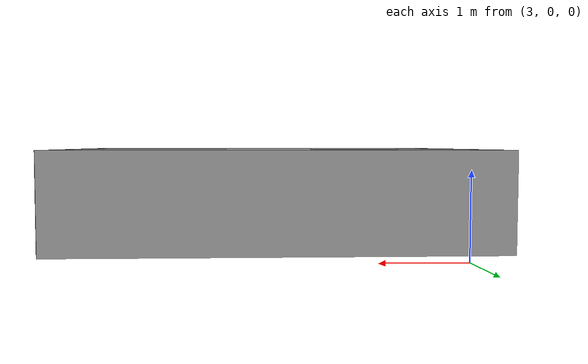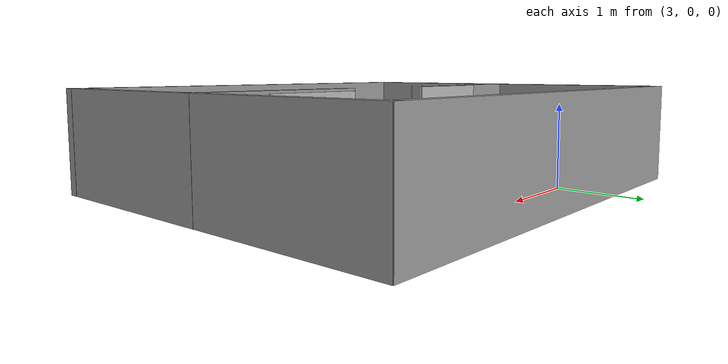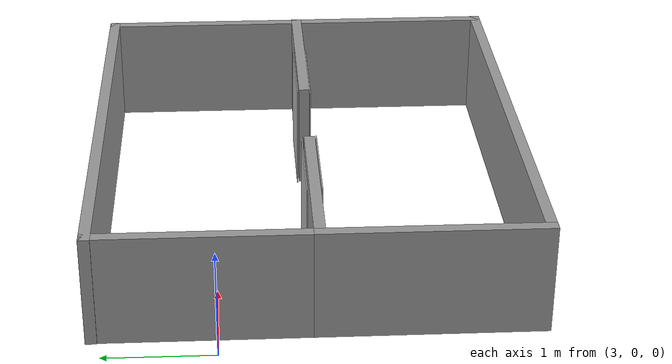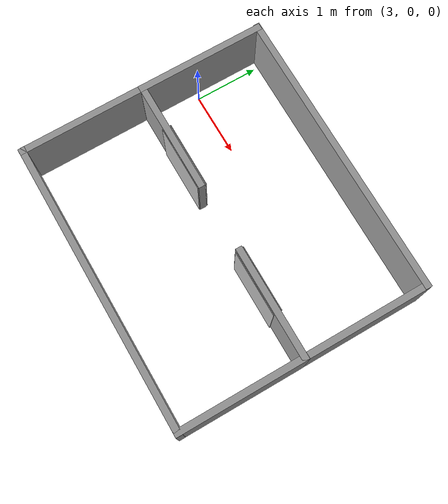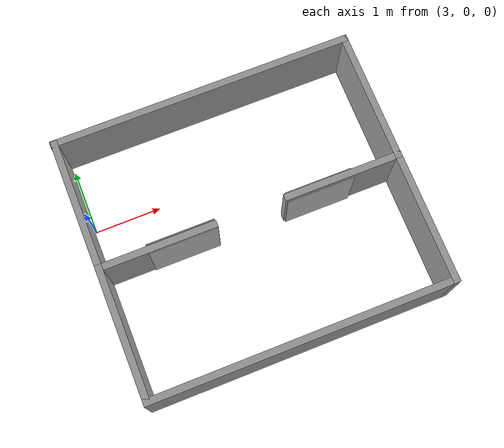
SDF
<?xml version='1.0'?>
<sdf version='1.7'>
  <model name='2_room_tagged'>
    <link name='link_0_clone_0'>
      <inertial>
        <mass>1</mass>
        <inertia>
          <ixx>0.166667</ixx>
          <ixy>0</ixy>
          <ixz>0</ixz>
          <iyy>0.166667</iyy>
          <iyz>0</iyz>
          <izz>0.166667</izz>
        </inertia>
        <pose>0 0 0 0 -0 0</pose>
      </inertial>
      <pose>2.941 -1.80696 0.726516 0 -0 0</pose>
      <gravity>1</gravity>
      <self_collide>0</self_collide>
      <kinematic>0</kinematic>
      <enable_wind>0</enable_wind>
      <visual name='visual'>
        <pose>0 0 0 0 -0 0</pose>
        <geometry>
          <box>
            <size>0.1 2 1</size>
          </box>
        </geometry>
        <material>
          <lighting>1</lighting>
          <script>
            <uri>file://media/materials/scripts/gazebo.material</uri>
            <name>Gazebo/Grey</name>
          </script>
          <shader type='pixel'>
            <normal_map>__default__</normal_map>
          </shader>
          <ambient>0.3 0.3 0.3 1</ambient>
          <diffuse>0.7 0.7 0.7 1</diffuse>
          <specular>0.01 0.01 0.01 1</specular>
          <emissive>0 0 0 1</emissive>
        </material>
        <transparency>0</transparency>
        <cast_shadows>1</cast_shadows>
      </visual>
      <collision name='collision'>
        <laser_retro>0</laser_retro>
        <max_contacts>10</max_contacts>
        <pose>0 0 0 0 -0 0</pose>
        <geometry>
          <box>
            <size>0.1 2 1</size>
          </box>
        </geometry>
        <surface>
          <friction>
            <ode>
              <mu>1</mu>
              <mu2>1</mu2>
              <fdir1>0 0 0</fdir1>
              <slip1>0</slip1>
              <slip2>0</slip2>
            </ode>
            <torsional>
              <coefficient>1</coefficient>
              <patch_radius>0</patch_radius>
              <surface_radius>0</surface_radius>
              <use_patch_radius>1</use_patch_radius>
              <ode>
                <slip>0</slip>
              </ode>
            </torsional>
          </friction>
          <bounce>
            <restitution_coefficient>0</restitution_coefficient>
            <threshold>1e+06</threshold>
          </bounce>
          <contact>
            <collide_without_contact>0</collide_without_contact>
            <collide_without_contact_bitmask>1</collide_without_contact_bitmask>
            <collide_bitmask>1</collide_bitmask>
            <ode>
              <soft_cfm>0</soft_cfm>
              <soft_erp>0.2</soft_erp>
              <kp>1e+13</kp>
              <kd>1</kd>
              <max_vel>0.01</max_vel>
              <min_depth>0</min_depth>
            </ode>
            <bullet>
              <split_impulse>1</split_impulse>
              <split_impulse_penetration_threshold>-0.01</split_impulse_penetration_threshold>
              <soft_cfm>0</soft_cfm>
              <soft_erp>0.2</soft_erp>
              <kp>1e+13</kp>
              <kd>1</kd>
            </bullet>
          </contact>
        </surface>
      </collision>
    </link>
    <link name='link_0_clone_0_clone'>
      <inertial>
        <mass>1</mass>
        <inertia>
          <ixx>0.166667</ixx>
          <ixy>0</ixy>
          <ixz>0</ixz>
          <iyy>0.166667</iyy>
          <iyz>0</iyz>
          <izz>0.166667</izz>
        </inertia>
        <pose>0 0 0 0 -0 0</pose>
      </inertial>
      <pose>2.94115 0.091646 0.726516 0 -0 0</pose>
      <gravity>1</gravity>
      <self_collide>0</self_collide>
      <kinematic>0</kinematic>
      <enable_wind>0</enable_wind>
      <visual name='visual'>
        <pose>0 0 0 0 -0 0</pose>
        <geometry>
          <box>
            <size>0.1 2 1</size>
          </box>
        </geometry>
        <material>
          <lighting>1</lighting>
          <script>
            <uri>file://media/materials/scripts/gazebo.material</uri>
            <name>Gazebo/Grey</name>
          </script>
          <shader type='pixel'>
            <normal_map>__default__</normal_map>
          </shader>
          <ambient>0.3 0.3 0.3 1</ambient>
          <diffuse>0.7 0.7 0.7 1</diffuse>
          <specular>0.01 0.01 0.01 1</specular>
          <emissive>0 0 0 1</emissive>
        </material>
        <transparency>0</transparency>
        <cast_shadows>1</cast_shadows>
      </visual>
      <collision name='collision'>
        <laser_retro>0</laser_retro>
        <max_contacts>10</max_contacts>
        <pose>0 0 0 0 -0 0</pose>
        <geometry>
          <box>
            <size>0.1 2 1</size>
          </box>
        </geometry>
        <surface>
          <friction>
            <ode>
              <mu>1</mu>
              <mu2>1</mu2>
              <fdir1>0 0 0</fdir1>
              <slip1>0</slip1>
              <slip2>0</slip2>
            </ode>
            <torsional>
              <coefficient>1</coefficient>
              <patch_radius>0</patch_radius>
              <surface_radius>0</surface_radius>
              <use_patch_radius>1</use_patch_radius>
              <ode>
                <slip>0</slip>
              </ode>
            </torsional>
          </friction>
          <bounce>
            <restitution_coefficient>0</restitution_coefficient>
            <threshold>1e+06</threshold>
          </bounce>
          <contact>
            <collide_without_contact>0</collide_without_contact>
            <collide_without_contact_bitmask>1</collide_without_contact_bitmask>
            <collide_bitmask>1</collide_bitmask>
            <ode>
              <soft_cfm>0</soft_cfm>
              <soft_erp>0.2</soft_erp>
              <kp>1e+13</kp>
              <kd>1</kd>
              <max_vel>0.01</max_vel>
              <min_depth>0</min_depth>
            </ode>
            <bullet>
              <split_impulse>1</split_impulse>
              <split_impulse_penetration_threshold>-0.01</split_impulse_penetration_threshold>
              <soft_cfm>0</soft_cfm>
              <soft_erp>0.2</soft_erp>
              <kp>1e+13</kp>
              <kd>1</kd>
            </bullet>
          </contact>
        </surface>
      </collision>
    </link>
    <link name='link_0_clone_0_clone_1_clone'>
      <inertial>
        <mass>1</mass>
        <inertia>
          <ixx>0.166667</ixx>
          <ixy>0</ixy>
          <ixz>0</ixz>
          <iyy>0.166667</iyy>
          <iyz>0</iyz>
          <izz>0.166667</izz>
        </inertia>
        <pose>0 0 0 0 -0 0</pose>
      </inertial>
      <pose>3.76893 -0.857187 0.726516 0 0 -1.5708</pose>
      <gravity>1</gravity>
      <self_collide>0</self_collide>
      <kinematic>0</kinematic>
      <enable_wind>0</enable_wind>
      <visual name='visual'>
        <pose>0 0 0 0 -0 0</pose>
        <geometry>
          <box>
            <size>0.1 1.75 1</size>
          </box>
        </geometry>
        <material>
          <lighting>1</lighting>
          <script>
            <uri>file://media/materials/scripts/gazebo.material</uri>
            <name>Gazebo/Grey</name>
          </script>
          <shader type='pixel'>
            <normal_map>__default__</normal_map>
          </shader>
          <ambient>0.3 0.3 0.3 1</ambient>
          <diffuse>0.7 0.7 0.7 1</diffuse>
          <specular>0.01 0.01 0.01 1</specular>
          <emissive>0 0 0 1</emissive>
        </material>
        <transparency>0</transparency>
        <cast_shadows>1</cast_shadows>
      </visual>
      <collision name='collision'>
        <laser_retro>0</laser_retro>
        <max_contacts>10</max_contacts>
        <pose>0 0 0 0 -0 0</pose>
        <geometry>
          <box>
            <size>0.1 1.75 1</size>
          </box>
        </geometry>
        <surface>
          <friction>
            <ode>
              <mu>1</mu>
              <mu2>1</mu2>
              <fdir1>0 0 0</fdir1>
              <slip1>0</slip1>
              <slip2>0</slip2>
            </ode>
            <torsional>
              <coefficient>1</coefficient>
              <patch_radius>0</patch_radius>
              <surface_radius>0</surface_radius>
              <use_patch_radius>1</use_patch_radius>
              <ode>
                <slip>0</slip>
              </ode>
            </torsional>
          </friction>
          <bounce>
            <restitution_coefficient>0</restitution_coefficient>
            <threshold>1e+06</threshold>
          </bounce>
          <contact>
            <collide_without_contact>0</collide_without_contact>
            <collide_without_contact_bitmask>1</collide_without_contact_bitmask>
            <collide_bitmask>1</collide_bitmask>
            <ode>
              <soft_cfm>0</soft_cfm>
              <soft_erp>0.2</soft_erp>
              <kp>1e+13</kp>
              <kd>1</kd>
              <max_vel>0.01</max_vel>
              <min_depth>0</min_depth>
            </ode>
            <bullet>
              <split_impulse>1</split_impulse>
              <split_impulse_penetration_threshold>-0.01</split_impulse_penetration_threshold>
              <soft_cfm>0</soft_cfm>
              <soft_erp>0.2</soft_erp>
              <kp>1e+13</kp>
              <kd>1</kd>
            </bullet>
          </contact>
        </surface>
      </collision>
    </link>
    <link name='link_0_clone_0_clone_1_clone_clone'>
      <inertial>
        <mass>1</mass>
        <inertia>
          <ixx>0.166667</ixx>
          <ixy>0</ixy>
          <ixz>0</ixz>
          <iyy>0.166667</iyy>
          <iyz>0</iyz>
          <izz>0.166667</izz>
        </inertia>
        <pose>0 0 0 0 -0 0</pose>
      </inertial>
      <pose>5.14109 -2.75738 0.726516 0 0 -1.5708</pose>
      <gravity>1</gravity>
      <self_collide>0</self_collide>
      <kinematic>0</kinematic>
      <enable_wind>0</enable_wind>
      <visual name='visual'>
        <pose>0 0 0 0 -0 0</pose>
        <geometry>
          <box>
            <size>0.1 4.5 1</size>
          </box>
        </geometry>
        <material>
          <lighting>1</lighting>
          <script>
            <uri>file://media/materials/scripts/gazebo.material</uri>
            <name>Gazebo/Grey</name>
          </script>
          <shader type='pixel'>
            <normal_map>__default__</normal_map>
          </shader>
          <ambient>0.3 0.3 0.3 1</ambient>
          <diffuse>0.7 0.7 0.7 1</diffuse>
          <specular>0.01 0.01 0.01 1</specular>
          <emissive>0 0 0 1</emissive>
        </material>
        <transparency>0</transparency>
        <cast_shadows>1</cast_shadows>
      </visual>
      <collision name='collision'>
        <laser_retro>0</laser_retro>
        <max_contacts>10</max_contacts>
        <pose>0 0 0 0 -0 0</pose>
        <geometry>
          <box>
            <size>0.1 4.5 1</size>
          </box>
        </geometry>
        <surface>
          <friction>
            <ode>
              <mu>1</mu>
              <mu2>1</mu2>
              <fdir1>0 0 0</fdir1>
              <slip1>0</slip1>
              <slip2>0</slip2>
            </ode>
            <torsional>
              <coefficient>1</coefficient>
              <patch_radius>0</patch_radius>
              <surface_radius>0</surface_radius>
              <use_patch_radius>1</use_patch_radius>
              <ode>
                <slip>0</slip>
              </ode>
            </torsional>
          </friction>
          <bounce>
            <restitution_coefficient>0</restitution_coefficient>
            <threshold>1e+06</threshold>
          </bounce>
          <contact>
            <collide_without_contact>0</collide_without_contact>
            <collide_without_contact_bitmask>1</collide_without_contact_bitmask>
            <collide_bitmask>1</collide_bitmask>
            <ode>
              <soft_cfm>0</soft_cfm>
              <soft_erp>0.2</soft_erp>
              <kp>1e+13</kp>
              <kd>1</kd>
              <max_vel>0.01</max_vel>
              <min_depth>0</min_depth>
            </ode>
            <bullet>
              <split_impulse>1</split_impulse>
              <split_impulse_penetration_threshold>-0.01</split_impulse_penetration_threshold>
              <soft_cfm>0</soft_cfm>
              <soft_erp>0.2</soft_erp>
              <kp>1e+13</kp>
              <kd>1</kd>
            </bullet>
          </contact>
        </surface>
      </collision>
    </link>
    <link name='link_0_clone_0_clone_1_clone_clone_clone'>
      <inertial>
        <mass>1</mass>
        <inertia>
          <ixx>0.166667</ixx>
          <ixy>0</ixy>
          <ixz>0</ixz>
          <iyy>0.166667</iyy>
          <iyz>0</iyz>
          <izz>0.166667</izz>
        </inertia>
        <pose>0 0 0 0 -0 0</pose>
      </inertial>
      <pose>5.13286 1.04959 0.726516 0 0 -1.5708</pose>
      <gravity>1</gravity>
      <self_collide>0</self_collide>
      <kinematic>0</kinematic>
      <enable_wind>0</enable_wind>
      <visual name='visual'>
        <pose>0 0 0 0 -0 0</pose>
        <geometry>
          <box>
            <size>0.1 4.5 1</size>
          </box>
        </geometry>
        <material>
          <lighting>1</lighting>
          <script>
            <uri>file://media/materials/scripts/gazebo.material</uri>
            <name>Gazebo/Grey</name>
          </script>
          <shader type='pixel'>
            <normal_map>__default__</normal_map>
          </shader>
          <ambient>0.3 0.3 0.3 1</ambient>
          <diffuse>0.7 0.7 0.7 1</diffuse>
          <specular>0.01 0.01 0.01 1</specular>
          <emissive>0 0 0 1</emissive>
        </material>
        <transparency>0</transparency>
        <cast_shadows>1</cast_shadows>
      </visual>
      <collision name='collision'>
        <laser_retro>0</laser_retro>
        <max_contacts>10</max_contacts>
        <pose>0 0 0 0 -0 0</pose>
        <geometry>
          <box>
            <size>0.1 4.5 1</size>
          </box>
        </geometry>
        <surface>
          <friction>
            <ode>
              <mu>1</mu>
              <mu2>1</mu2>
              <fdir1>0 0 0</fdir1>
              <slip1>0</slip1>
              <slip2>0</slip2>
            </ode>
            <torsional>
              <coefficient>1</coefficient>
              <patch_radius>0</patch_radius>
              <surface_radius>0</surface_radius>
              <use_patch_radius>1</use_patch_radius>
              <ode>
                <slip>0</slip>
              </ode>
            </torsional>
          </friction>
          <bounce>
            <restitution_coefficient>0</restitution_coefficient>
            <threshold>1e+06</threshold>
          </bounce>
          <contact>
            <collide_without_contact>0</collide_without_contact>
            <collide_without_contact_bitmask>1</collide_without_contact_bitmask>
            <collide_bitmask>1</collide_bitmask>
            <ode>
              <soft_cfm>0</soft_cfm>
              <soft_erp>0.2</soft_erp>
              <kp>1e+13</kp>
              <kd>1</kd>
              <max_vel>0.01</max_vel>
              <min_depth>0</min_depth>
            </ode>
            <bullet>
              <split_impulse>1</split_impulse>
              <split_impulse_penetration_threshold>-0.01</split_impulse_penetration_threshold>
              <soft_cfm>0</soft_cfm>
              <soft_erp>0.2</soft_erp>
              <kp>1e+13</kp>
              <kd>1</kd>
            </bullet>
          </contact>
        </surface>
      </collision>
    </link>
    <link name='link_0_clone_0_clone_clone'>
      <inertial>
        <mass>1</mass>
        <inertia>
          <ixx>0.166667</ixx>
          <ixy>0</ixy>
          <ixz>0</ixz>
          <iyy>0.166667</iyy>
          <iyz>0</iyz>
          <izz>0.166667</izz>
        </inertia>
        <pose>0 0 0 0 -0 0</pose>
      </inertial>
      <pose>7.33895 -1.80838 0.726516 0 -0 0</pose>
      <gravity>1</gravity>
      <self_collide>0</self_collide>
      <kinematic>0</kinematic>
      <enable_wind>0</enable_wind>
      <visual name='visual'>
        <pose>0 0 0 0 -0 0</pose>
        <geometry>
          <box>
            <size>0.1 2 1</size>
          </box>
        </geometry>
        <material>
          <lighting>1</lighting>
          <script>
            <uri>file://media/materials/scripts/gazebo.material</uri>
            <name>Gazebo/Grey</name>
          </script>
          <shader type='pixel'>
            <normal_map>__default__</normal_map>
          </shader>
          <ambient>0.3 0.3 0.3 1</ambient>
          <diffuse>0.7 0.7 0.7 1</diffuse>
          <specular>0.01 0.01 0.01 1</specular>
          <emissive>0 0 0 1</emissive>
        </material>
        <transparency>0</transparency>
        <cast_shadows>1</cast_shadows>
      </visual>
      <collision name='collision'>
        <laser_retro>0</laser_retro>
        <max_contacts>10</max_contacts>
        <pose>0 0 0 0 -0 0</pose>
        <geometry>
          <box>
            <size>0.1 2 1</size>
          </box>
        </geometry>
        <surface>
          <friction>
            <ode>
              <mu>1</mu>
              <mu2>1</mu2>
              <fdir1>0 0 0</fdir1>
              <slip1>0</slip1>
              <slip2>0</slip2>
            </ode>
            <torsional>
              <coefficient>1</coefficient>
              <patch_radius>0</patch_radius>
              <surface_radius>0</surface_radius>
              <use_patch_radius>1</use_patch_radius>
              <ode>
                <slip>0</slip>
              </ode>
            </torsional>
          </friction>
          <bounce>
            <restitution_coefficient>0</restitution_coefficient>
            <threshold>1e+06</threshold>
          </bounce>
          <contact>
            <collide_without_contact>0</collide_without_contact>
            <collide_without_contact_bitmask>1</collide_without_contact_bitmask>
            <collide_bitmask>1</collide_bitmask>
            <ode>
              <soft_cfm>0</soft_cfm>
              <soft_erp>0.2</soft_erp>
              <kp>1e+13</kp>
              <kd>1</kd>
              <max_vel>0.01</max_vel>
              <min_depth>0</min_depth>
            </ode>
            <bullet>
              <split_impulse>1</split_impulse>
              <split_impulse_penetration_threshold>-0.01</split_impulse_penetration_threshold>
              <soft_cfm>0</soft_cfm>
              <soft_erp>0.2</soft_erp>
              <kp>1e+13</kp>
              <kd>1</kd>
            </bullet>
          </contact>
        </surface>
      </collision>
    </link>
    <link name='link_0_clone_0_clone_clone_clone'>
      <inertial>
        <mass>1</mass>
        <inertia>
          <ixx>0.166667</ixx>
          <ixy>0</ixy>
          <ixz>0</ixz>
          <iyy>0.166667</iyy>
          <iyz>0</iyz>
          <izz>0.166667</izz>
        </inertia>
        <pose>0 0 0 0 -0 0</pose>
      </inertial>
      <pose>7.33662 0.093628 0.726516 0 -0 0</pose>
      <gravity>1</gravity>
      <self_collide>0</self_collide>
      <kinematic>0</kinematic>
      <enable_wind>0</enable_wind>
      <visual name='visual'>
        <pose>0 0 0 0 -0 0</pose>
        <geometry>
          <box>
            <size>0.1 2 1</size>
          </box>
        </geometry>
        <material>
          <lighting>1</lighting>
          <script>
            <uri>file://media/materials/scripts/gazebo.material</uri>
            <name>Gazebo/Grey</name>
          </script>
          <shader type='pixel'>
            <normal_map>__default__</normal_map>
          </shader>
          <ambient>0.3 0.3 0.3 1</ambient>
          <diffuse>0.7 0.7 0.7 1</diffuse>
          <specular>0.01 0.01 0.01 1</specular>
          <emissive>0 0 0 1</emissive>
        </material>
        <transparency>0</transparency>
        <cast_shadows>1</cast_shadows>
      </visual>
      <collision name='collision'>
        <laser_retro>0</laser_retro>
        <max_contacts>10</max_contacts>
        <pose>0 0 0 0 -0 0</pose>
        <geometry>
          <box>
            <size>0.1 2 1</size>
          </box>
        </geometry>
        <surface>
          <friction>
            <ode>
              <mu>1</mu>
              <mu2>1</mu2>
              <fdir1>0 0 0</fdir1>
              <slip1>0</slip1>
              <slip2>0</slip2>
            </ode>
            <torsional>
              <coefficient>1</coefficient>
              <patch_radius>0</patch_radius>
              <surface_radius>0</surface_radius>
              <use_patch_radius>1</use_patch_radius>
              <ode>
                <slip>0</slip>
              </ode>
            </torsional>
          </friction>
          <bounce>
            <restitution_coefficient>0</restitution_coefficient>
            <threshold>1e+06</threshold>
          </bounce>
          <contact>
            <collide_without_contact>0</collide_without_contact>
            <collide_without_contact_bitmask>1</collide_without_contact_bitmask>
            <collide_bitmask>1</collide_bitmask>
            <ode>
              <soft_cfm>0</soft_cfm>
              <soft_erp>0.2</soft_erp>
              <kp>1e+13</kp>
              <kd>1</kd>
              <max_vel>0.01</max_vel>
              <min_depth>0</min_depth>
            </ode>
            <bullet>
              <split_impulse>1</split_impulse>
              <split_impulse_penetration_threshold>-0.01</split_impulse_penetration_threshold>
              <soft_cfm>0</soft_cfm>
              <soft_erp>0.2</soft_erp>
              <kp>1e+13</kp>
              <kd>1</kd>
            </bullet>
          </contact>
        </surface>
      </collision>
    </link>
    <link name='link_0_clone_0_clone_clone_clone_0'>
      <inertial>
        <mass>1</mass>
        <inertia>
          <ixx>0.166667</ixx>
          <ixy>0</ixy>
          <ixz>0</ixz>
          <iyy>0.166667</iyy>
          <iyz>0</iyz>
          <izz>0.166667</izz>
        </inertia>
        <pose>0 0 0 0 -0 0</pose>
      </inertial>
      <pose>6.50976 -0.859788 0.726516 0 0 -1.5708</pose>
      <gravity>1</gravity>
      <self_collide>0</self_collide>
      <kinematic>0</kinematic>
      <enable_wind>0</enable_wind>
      <visual name='visual'>
        <pose>0 0 0 0 -0 0</pose>
        <geometry>
          <box>
            <size>0.1 1.75 1</size>
          </box>
        </geometry>
        <material>
          <lighting>1</lighting>
          <script>
            <uri>file://media/materials/scripts/gazebo.material</uri>
            <name>Gazebo/Grey</name>
          </script>
          <shader type='pixel'>
            <normal_map>__default__</normal_map>
          </shader>
          <ambient>0.3 0.3 0.3 1</ambient>
          <diffuse>0.7 0.7 0.7 1</diffuse>
          <specular>0.01 0.01 0.01 1</specular>
          <emissive>0 0 0 1</emissive>
        </material>
        <transparency>0</transparency>
        <cast_shadows>1</cast_shadows>
      </visual>
      <collision name='collision'>
        <laser_retro>0</laser_retro>
        <max_contacts>10</max_contacts>
        <pose>0 0 0 0 -0 0</pose>
        <geometry>
          <box>
            <size>0.1 1.75 1</size>
          </box>
        </geometry>
        <surface>
          <friction>
            <ode>
              <mu>1</mu>
              <mu2>1</mu2>
              <fdir1>0 0 0</fdir1>
              <slip1>0</slip1>
              <slip2>0</slip2>
            </ode>
            <torsional>
              <coefficient>1</coefficient>
              <patch_radius>0</patch_radius>
              <surface_radius>0</surface_radius>
              <use_patch_radius>1</use_patch_radius>
              <ode>
                <slip>0</slip>
              </ode>
            </torsional>
          </friction>
          <bounce>
            <restitution_coefficient>0</restitution_coefficient>
            <threshold>1e+06</threshold>
          </bounce>
          <contact>
            <collide_without_contact>0</collide_without_contact>
            <collide_without_contact_bitmask>1</collide_without_contact_bitmask>
            <collide_bitmask>1</collide_bitmask>
            <ode>
              <soft_cfm>0</soft_cfm>
              <soft_erp>0.2</soft_erp>
              <kp>1e+13</kp>
              <kd>1</kd>
              <max_vel>0.01</max_vel>
              <min_depth>0</min_depth>
            </ode>
            <bullet>
              <split_impulse>1</split_impulse>
              <split_impulse_penetration_threshold>-0.01</split_impulse_penetration_threshold>
              <soft_cfm>0</soft_cfm>
              <soft_erp>0.2</soft_erp>
              <kp>1e+13</kp>
              <kd>1</kd>
            </bullet>
          </contact>
        </surface>
      </collision>
    </link>
    <model name='Apriltag36_11_00000'>
      <link name='main'>
        <pose>0 0 0 0 -0 0</pose>
        <visual name='main_Visual'>
          <geometry>
            <box>
              <size>1 1 0.01</size>
            </box>
          </geometry>
          <material>
            <script>
              <uri>model://Apriltag36_11_00000/materials/scripts</uri>
              <uri>model://Apriltag36_11_00000/materials/textures</uri>
              <name>Apriltag36_11_00000</name>
            </script>
          </material>
        </visual>
      </link>
      <static>1</static>
      <pose>4.13627 -0.918037 0.736809 1.5708 -0 0</pose>
    </model>
    <model name='Apriltag36_11_00001'>
      <link name='main'>
        <pose>0 0 0 0 -0 0</pose>
        <visual name='main_Visual'>
          <geometry>
            <box>
              <size>1 1 0.01</size>
            </box>
          </geometry>
          <material>
            <script>
              <uri>model://Apriltag36_11_00001/materials/scripts</uri>
              <uri>model://Apriltag36_11_00001/materials/textures</uri>
              <name>Apriltag36_11_00001</name>
            </script>
          </material>
        </visual>
      </link>
      <static>1</static>
      <pose>6.16095 -0.919793 0.678716 1.5708 -0 0</pose>
    </model>
    <model name='Apriltag36_11_00002'>
      <link name='main'>
        <pose>0 0 0 0 -0 0</pose>
        <visual name='main_Visual'>
          <geometry>
            <box>
              <size>1 1 0.01</size>
            </box>
          </geometry>
          <material>
            <script>
              <uri>model://Apriltag36_11_00002/materials/scripts</uri>
              <uri>model://Apriltag36_11_00002/materials/textures</uri>
              <name>Apriltag36_11_00002</name>
            </script>
          </material>
        </visual>
      </link>
      <static>1</static>
      <pose>6.15525 -0.796251 0.702125 -1.5708 0 0</pose>
    </model>
    <model name='Apriltag36_11_00003'>
      <link name='main'>
        <pose>0 0 0 0 -0 0</pose>
        <visual name='main_Visual'>
          <geometry>
            <box>
              <size>1 1 0.01</size>
            </box>
          </geometry>
          <material>
            <script>
              <uri>model://Apriltag36_11_00003/materials/scripts</uri>
              <uri>model://Apriltag36_11_00003/materials/textures</uri>
              <name>Apriltag36_11_00003</name>
            </script>
          </material>
        </visual>
      </link>
      <static>1</static>
      <pose>4.13469 -0.787642 0.722 -1.5708 0 0</pose>
    </model>
    <joint name='main_JOINT_5' type='fixed'>
      <parent>Apriltag36_11_00000::main</parent>
      <child>link_0_clone_0_clone_1_clone</child>
      <pose>0 0 0 0 -0 0</pose>
      <physics>
        <ode>
          <limit>
            <cfm>0</cfm>
            <erp>0.2</erp>
          </limit>
          <suspension>
            <cfm>0</cfm>
            <erp>0.2</erp>
          </suspension>
        </ode>
      </physics>
    </joint>
    <joint name='main_JOINT_4' type='fixed'>
      <parent>Apriltag36_11_00001::main</parent>
      <child>link_0_clone_0_clone_clone_clone_0</child>
      <pose>0 0 0 0 -0 0</pose>
      <physics>
        <ode>
          <limit>
            <cfm>0</cfm>
            <erp>0.2</erp>
          </limit>
          <suspension>
            <cfm>0</cfm>
            <erp>0.2</erp>
          </suspension>
        </ode>
      </physics>
    </joint>
    <joint name='link_0_clone_0_JOINT_0' type='fixed'>
      <parent>link_0_clone_0</parent>
      <child>link_0_clone_0_clone_1_clone</child>
      <pose>0 0 0 0 -0 0</pose>
      <physics>
        <ode>
          <limit>
            <cfm>0</cfm>
            <erp>0.2</erp>
          </limit>
          <suspension>
            <cfm>0</cfm>
            <erp>0.2</erp>
          </suspension>
        </ode>
      </physics>
    </joint>
    <joint name='link_0_clone_0_JOINT_1' type='fixed'>
      <parent>link_0_clone_0</parent>
      <child>link_0_clone_0_clone_1_clone</child>
      <pose>0 0 0 0 -0 0</pose>
      <physics>
        <ode>
          <limit>
            <cfm>0</cfm>
            <erp>0.2</erp>
          </limit>
          <suspension>
            <cfm>0</cfm>
            <erp>0.2</erp>
          </suspension>
        </ode>
      </physics>
    </joint>
    <joint name='link_0_clone_0_clone_1_clone_JOINT_2' type='fixed'>
      <parent>link_0_clone_0_clone_1_clone</parent>
      <child>link_0_clone_0_clone</child>
      <pose>0 0 0 0 -0 0</pose>
      <physics>
        <ode>
          <limit>
            <cfm>0</cfm>
            <erp>0.2</erp>
          </limit>
          <suspension>
            <cfm>0</cfm>
            <erp>0.2</erp>
          </suspension>
        </ode>
      </physics>
    </joint>
    <static>1</static>
    <allow_auto_disable>1</allow_auto_disable>
  </model>
</sdf>
